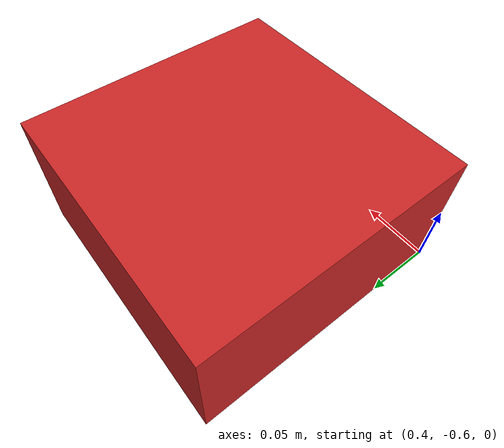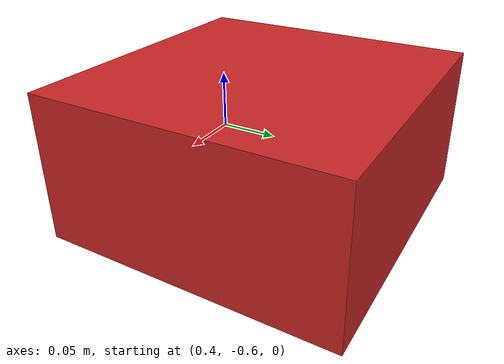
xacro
<?xml version="1.0"?>
<robot
    xmlns:xacro="http://www.ros.org/wiki/xacro" name="target_location" >
    <!-- Variables: -->
    <xacro:property name="position" value="0.5 -0.5 0.05" />
    <xacro:property name="size" value="0.2 0.2 0.1" />
    <!-- Used for fixing robot to Gazebo 'world' -->
    <link name="world" />
    <joint name="fixed" type="fixed">
        <parent link="world" />
        <child link="core" />
    </joint>
    <!-- Core: target location object -->
    <link name="core">
        <inertial>
            <origin xyz="0 0 0" />
            <mass value="1.0" />
            <inertia ixx="0.0" ixy="0.0" ixz="0.0" iyy="0.0" iyz="0.0" izz="0.0" />
        </inertial>
        <visual>
            <origin xyz="${position}" />
            <geometry>
                <box size="${size}" />
            </geometry>
        </visual>
        <collision>
            <origin xyz="${position}" />
            <geometry>
                <box size="${size}" />
            </geometry>
        </collision>
    </link>
    <!-- Gazebo settings -->
    <gazebo reference="core">
        <gravity>0</gravity>
        <material>Gazebo/Red</material>
    </gazebo>
</robot>
